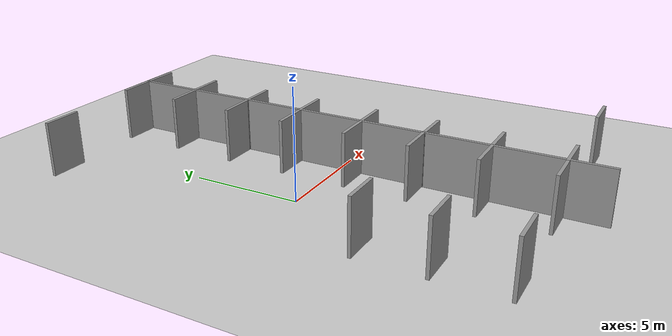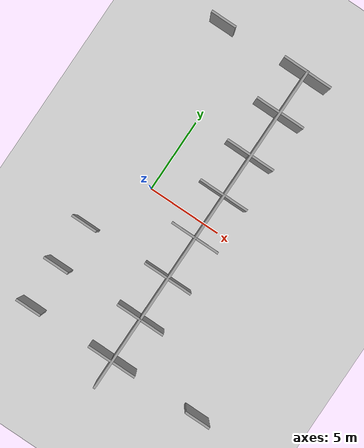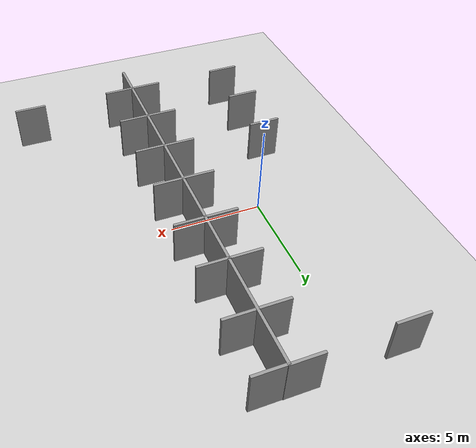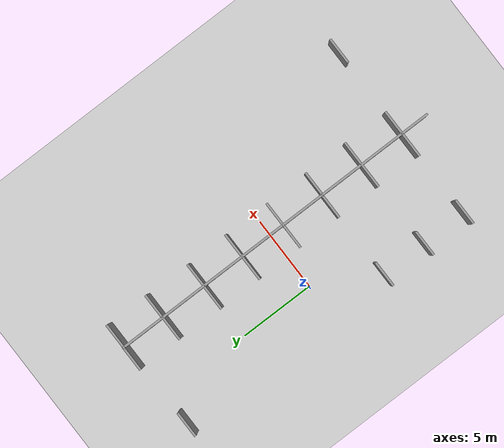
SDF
<sdf version="1.6">
 <world name="default">
  <model name="ground_plane">
   <static>1</static>
   <link name="link">
    <collision name="collision">
     <geometry><plane><normal>0 0 1</normal><size>100 100</size></plane></geometry>
     <surface>
      <contact><collide_bitmask>65535</collide_bitmask></contact>
      <friction><ode><mu>100</mu><mu2>50</mu2></ode></friction>
     </surface>
    </collision>
    <visual name="visual">
     <cast_shadows>0</cast_shadows>
     <geometry><plane><normal>0 0 1</normal><size>100 100</size></plane></geometry>
     <material>
      <script><uri>file://media/materials/scripts/gazebo.material</uri><name>Gazebo/Grey</name></script>
     </material>
    </visual>
   </link>
  </model>
  <model name="Warehouse_Map">
   <link name="Wall_10_clone_14">
    <pose>-15.9666 14.2849 0 0 -0 3.14159</pose>
    <visual name="Wall_10_Visual">
     <pose>0 0 1.25 0 -0 0</pose>
     <geometry><box><size>1.75 0.15 2.5</size></box></geometry>
     <material>
      <script><uri>file://media/materials/scripts/gazebo.material</uri><name>Gazebo/Grey</name></script>
      <ambient>1 1 1 1</ambient>
      <shader type="pixel"/>
     </material>
     <meta><layer>0</layer></meta>
    </visual>
    <collision name="Wall_10_Collision">
     <pose>0 0 1.25 0 -0 0</pose>
     <geometry><box><size>1.75 0.15 2.5</size></box></geometry>
     <surface>
      <friction>
       <ode><mu>1</mu><mu2>1</mu2><fdir1>0 0 0</fdir1><slip1>0</slip1><slip2>0</slip2></ode>
       <torsional>
        <coefficient>1</coefficient>
        <patch_radius>0</patch_radius>
        <surface_radius>0</surface_radius>
        <use_patch_radius>1</use_patch_radius>
        <ode><slip>0</slip></ode>
       </torsional>
      </friction>
      <bounce><restitution_coefficient>0</restitution_coefficient><threshold>1e+06</threshold></bounce>
      <contact>
       <collide_without_contact>0</collide_without_contact>
       <collide_without_contact_bitmask>1</collide_without_contact_bitmask>
       <collide_bitmask>1</collide_bitmask>
       <ode>
        <soft_cfm>0</soft_cfm>
        <soft_erp>0.2</soft_erp>
        <kp>1e+13</kp>
        <kd>1</kd>
        <max_vel>0.01</max_vel>
        <min_depth>0</min_depth>
       </ode>
       <bullet>
        <split_impulse>1</split_impulse>
        <split_impulse_penetration_threshold>-0.01</split_impulse_penetration_threshold>
        <soft_cfm>0</soft_cfm>
        <soft_erp>0.2</soft_erp>
        <kp>1e+13</kp>
        <kd>1</kd>
       </bullet>
      </contact>
     </surface>
    </collision>
   </link>
   <link name="Wall_10_clone_19">
    <pose>-16.0514 -0.584713 0 0 -0 3.14159</pose>
    <visual name="Wall_10_Visual">
     <pose>0 0 1.25 0 -0 0</pose>
     <geometry><box><size>1.75 0.15 2.5</size></box></geometry>
     <material>
      <script><uri>file://media/materials/scripts/gazebo.material</uri><name>Gazebo/Grey</name></script>
      <ambient>1 1 1 1</ambient>
      <shader type="pixel"/>
     </material>
     <meta><layer>0</layer></meta>
    </visual>
    <collision name="Wall_10_Collision">
     <pose>0 0 1.25 0 -0 0</pose>
     <geometry><box><size>1.75 0.15 2.5</size></box></geometry>
     <surface>
      <friction>
       <ode><mu>1</mu><mu2>1</mu2><fdir1>0 0 0</fdir1><slip1>0</slip1><slip2>0</slip2></ode>
       <torsional>
        <coefficient>1</coefficient>
        <patch_radius>0</patch_radius>
        <surface_radius>0</surface_radius>
        <use_patch_radius>1</use_patch_radius>
        <ode><slip>0</slip></ode>
       </torsional>
      </friction>
      <bounce><restitution_coefficient>0</restitution_coefficient><threshold>1e+06</threshold></bounce>
      <contact>
       <collide_without_contact>0</collide_without_contact>
       <collide_without_contact_bitmask>1</collide_without_contact_bitmask>
       <collide_bitmask>1</collide_bitmask>
       <ode>
        <soft_cfm>0</soft_cfm>
        <soft_erp>0.2</soft_erp>
        <kp>1e+13</kp>
        <kd>1</kd>
        <max_vel>0.01</max_vel>
        <min_depth>0</min_depth>
       </ode>
       <bullet>
        <split_impulse>1</split_impulse>
        <split_impulse_penetration_threshold>-0.01</split_impulse_penetration_threshold>
        <soft_cfm>0</soft_cfm>
        <soft_erp>0.2</soft_erp>
        <kp>1e+13</kp>
        <kd>1</kd>
       </bullet>
      </contact>
     </surface>
    </collision>
   </link>
   <link name="Wall_10_clone_20">
    <pose>-16.0486 -3.62068 0 0 -0 3.14159</pose>
    <visual name="Wall_10_Visual">
     <pose>0 0 1.25 0 -0 0</pose>
     <geometry><box><size>1.75 0.15 2.5</size></box></geometry>
     <material>
      <script><uri>file://media/materials/scripts/gazebo.material</uri><name>Gazebo/Grey</name></script>
      <ambient>1 1 1 1</ambient>
      <shader type="pixel"/>
     </material>
     <meta><layer>0</layer></meta>
    </visual>
    <collision name="Wall_10_Collision">
     <pose>0 0 1.25 0 -0 0</pose>
     <geometry><box><size>1.75 0.15 2.5</size></box></geometry>
     <surface>
      <friction>
       <ode><mu>1</mu><mu2>1</mu2><fdir1>0 0 0</fdir1><slip1>0</slip1><slip2>0</slip2></ode>
       <torsional>
        <coefficient>1</coefficient>
        <patch_radius>0</patch_radius>
        <surface_radius>0</surface_radius>
        <use_patch_radius>1</use_patch_radius>
        <ode><slip>0</slip></ode>
       </torsional>
      </friction>
      <bounce><restitution_coefficient>0</restitution_coefficient><threshold>1e+06</threshold></bounce>
      <contact>
       <collide_without_contact>0</collide_without_contact>
       <collide_without_contact_bitmask>1</collide_without_contact_bitmask>
       <collide_bitmask>1</collide_bitmask>
       <ode>
        <soft_cfm>0</soft_cfm>
        <soft_erp>0.2</soft_erp>
        <kp>1e+13</kp>
        <kd>1</kd>
        <max_vel>0.01</max_vel>
        <min_depth>0</min_depth>
       </ode>
       <bullet>
        <split_impulse>1</split_impulse>
        <split_impulse_penetration_threshold>-0.01</split_impulse_penetration_threshold>
        <soft_cfm>0</soft_cfm>
        <soft_erp>0.2</soft_erp>
        <kp>1e+13</kp>
        <kd>1</kd>
       </bullet>
      </contact>
     </surface>
    </collision>
   </link>
   <link name="Wall_10_clone_21">
    <pose>-16.0078 -6.65175 0 0 -0 3.14159</pose>
    <visual name="Wall_10_Visual">
     <pose>0 0 1.25 0 -0 0</pose>
     <geometry><box><size>1.75 0.15 2.5</size></box></geometry>
     <material>
      <script><uri>file://media/materials/scripts/gazebo.material</uri><name>Gazebo/Grey</name></script>
      <ambient>1 1 1 1</ambient>
      <shader type="pixel"/>
     </material>
     <meta><layer>0</layer></meta>
    </visual>
    <collision name="Wall_10_Collision">
     <pose>0 0 1.25 0 -0 0</pose>
     <geometry><box><size>1.75 0.15 2.5</size></box></geometry>
     <surface>
      <friction>
       <ode><mu>1</mu><mu2>1</mu2><fdir1>0 0 0</fdir1><slip1>0</slip1><slip2>0</slip2></ode>
       <torsional>
        <coefficient>1</coefficient>
        <patch_radius>0</patch_radius>
        <surface_radius>0</surface_radius>
        <use_patch_radius>1</use_patch_radius>
        <ode><slip>0</slip></ode>
       </torsional>
      </friction>
      <bounce><restitution_coefficient>0</restitution_coefficient><threshold>1e+06</threshold></bounce>
      <contact>
       <collide_without_contact>0</collide_without_contact>
       <collide_without_contact_bitmask>1</collide_without_contact_bitmask>
       <collide_bitmask>1</collide_bitmask>
       <ode>
        <soft_cfm>0</soft_cfm>
        <soft_erp>0.2</soft_erp>
        <kp>1e+13</kp>
        <kd>1</kd>
        <max_vel>0.01</max_vel>
        <min_depth>0</min_depth>
       </ode>
       <bullet>
        <split_impulse>1</split_impulse>
        <split_impulse_penetration_threshold>-0.01</split_impulse_penetration_threshold>
        <soft_cfm>0</soft_cfm>
        <soft_erp>0.2</soft_erp>
        <kp>1e+13</kp>
        <kd>1</kd>
       </bullet>
      </contact>
     </surface>
    </collision>
   </link>
   <link name="Wall_10_clone_21_clone">
    <pose>-10.8177 14.4759 0 0 -0 3.14159</pose>
    <visual name="Wall_10_Visual">
     <pose>0 0 1.25 0 -0 0</pose>
     <geometry><box><size>1.75 0.15 2.5</size></box></geometry>
     <material>
      <script><uri>file://media/materials/scripts/gazebo.material</uri><name>Gazebo/Grey</name></script>
      <ambient>1 1 1 1</ambient>
      <shader type="pixel"/>
     </material>
     <meta><layer>0</layer></meta>
    </visual>
    <collision name="Wall_10_Collision">
     <pose>0 0 1.25 0 -0 0</pose>
     <geometry><box><size>1.75 0.15 2.5</size></box></geometry>
     <surface>
      <friction>
       <ode><mu>1</mu><mu2>1</mu2><fdir1>0 0 0</fdir1><slip1>0</slip1><slip2>0</slip2></ode>
       <torsional>
        <coefficient>1</coefficient>
        <patch_radius>0</patch_radius>
        <surface_radius>0</surface_radius>
        <use_patch_radius>1</use_patch_radius>
        <ode><slip>0</slip></ode>
       </torsional>
      </friction>
      <bounce><restitution_coefficient>0</restitution_coefficient><threshold>1e+06</threshold></bounce>
      <contact>
       <collide_without_contact>0</collide_without_contact>
       <collide_without_contact_bitmask>1</collide_without_contact_bitmask>
       <collide_bitmask>1</collide_bitmask>
       <ode>
        <soft_cfm>0</soft_cfm>
        <soft_erp>0.2</soft_erp>
        <kp>1e+13</kp>
        <kd>1</kd>
        <max_vel>0.01</max_vel>
        <min_depth>0</min_depth>
       </ode>
       <bullet>
        <split_impulse>1</split_impulse>
        <split_impulse_penetration_threshold>-0.01</split_impulse_penetration_threshold>
        <soft_cfm>0</soft_cfm>
        <soft_erp>0.2</soft_erp>
        <kp>1e+13</kp>
        <kd>1</kd>
       </bullet>
      </contact>
     </surface>
    </collision>
   </link>
   <link name="Wall_10_clone_21_clone_0">
    <pose>-9.18611 14.4524 0 0 -0 3.14159</pose>
    <visual name="Wall_10_Visual">
     <pose>0 0 1.25 0 -0 0</pose>
     <geometry><box><size>1.75 0.15 2.5</size></box></geometry>
     <material>
      <script><uri>file://media/materials/scripts/gazebo.material</uri><name>Gazebo/Grey</name></script>
      <ambient>1 1 1 1</ambient>
      <shader type="pixel"/>
     </material>
     <meta><layer>0</layer></meta>
    </visual>
    <collision name="Wall_10_Collision">
     <pose>0 0 1.25 0 -0 0</pose>
     <geometry><box><size>1.75 0.15 2.5</size></box></geometry>
     <surface>
      <friction>
       <ode><mu>1</mu><mu2>1</mu2><fdir1>0 0 0</fdir1><slip1>0</slip1><slip2>0</slip2></ode>
       <torsional>
        <coefficient>1</coefficient>
        <patch_radius>0</patch_radius>
        <surface_radius>0</surface_radius>
        <use_patch_radius>1</use_patch_radius>
        <ode><slip>0</slip></ode>
       </torsional>
      </friction>
      <bounce><restitution_coefficient>0</restitution_coefficient><threshold>1e+06</threshold></bounce>
      <contact>
       <collide_without_contact>0</collide_without_contact>
       <collide_without_contact_bitmask>1</collide_without_contact_bitmask>
       <collide_bitmask>1</collide_bitmask>
       <ode>
        <soft_cfm>0</soft_cfm>
        <soft_erp>0.2</soft_erp>
        <kp>1e+13</kp>
        <kd>1</kd>
        <max_vel>0.01</max_vel>
        <min_depth>0</min_depth>
       </ode>
       <bullet>
        <split_impulse>1</split_impulse>
        <split_impulse_penetration_threshold>-0.01</split_impulse_penetration_threshold>
        <soft_cfm>0</soft_cfm>
        <soft_erp>0.2</soft_erp>
        <kp>1e+13</kp>
        <kd>1</kd>
       </bullet>
      </contact>
     </surface>
    </collision>
   </link>
   <link name="Wall_10_clone_21_clone_1">
    <pose>-10.8033 11.5118 0 0 -0 3.14159</pose>
    <visual name="Wall_10_Visual">
     <pose>0 0 1.25 0 -0 0</pose>
     <geometry><box><size>1.75 0.15 2.5</size></box></geometry>
     <material>
      <script><uri>file://media/materials/scripts/gazebo.material</uri><name>Gazebo/Grey</name></script>
      <ambient>1 1 1 1</ambient>
      <shader type="pixel"/>
     </material>
     <meta><layer>0</layer></meta>
    </visual>
    <collision name="Wall_10_Collision">
     <pose>0 0 1.25 0 -0 0</pose>
     <geometry><box><size>1.75 0.15 2.5</size></box></geometry>
     <surface>
      <friction>
       <ode><mu>1</mu><mu2>1</mu2><fdir1>0 0 0</fdir1><slip1>0</slip1><slip2>0</slip2></ode>
       <torsional>
        <coefficient>1</coefficient>
        <patch_radius>0</patch_radius>
        <surface_radius>0</surface_radius>
        <use_patch_radius>1</use_patch_radius>
        <ode><slip>0</slip></ode>
       </torsional>
      </friction>
      <bounce><restitution_coefficient>0</restitution_coefficient><threshold>1e+06</threshold></bounce>
      <contact>
       <collide_without_contact>0</collide_without_contact>
       <collide_without_contact_bitmask>1</collide_without_contact_bitmask>
       <collide_bitmask>1</collide_bitmask>
       <ode>
        <soft_cfm>0</soft_cfm>
        <soft_erp>0.2</soft_erp>
        <kp>1e+13</kp>
        <kd>1</kd>
        <max_vel>0.01</max_vel>
        <min_depth>0</min_depth>
       </ode>
       <bullet>
        <split_impulse>1</split_impulse>
        <split_impulse_penetration_threshold>-0.01</split_impulse_penetration_threshold>
        <soft_cfm>0</soft_cfm>
        <soft_erp>0.2</soft_erp>
        <kp>1e+13</kp>
        <kd>1</kd>
       </bullet>
      </contact>
     </surface>
    </collision>
   </link>
   <link name="Wall_10_clone_21_clone_10">
    <pose>-9.22502 -0.53089 0 0 -0 3.14159</pose>
    <visual name="Wall_10_Visual">
     <pose>0 0 1.25 0 -0 0</pose>
     <geometry><box><size>1.75 0.15 2.5</size></box></geometry>
     <material>
      <script><uri>file://media/materials/scripts/gazebo.material</uri><name>Gazebo/Grey</name></script>
      <ambient>1 1 1 1</ambient>
      <shader type="pixel"/>
     </material>
     <meta><layer>0</layer></meta>
    </visual>
    <collision name="Wall_10_Collision">
     <pose>0 0 1.25 0 -0 0</pose>
     <geometry><box><size>1.75 0.15 2.5</size></box></geometry>
     <surface>
      <friction>
       <ode><mu>1</mu><mu2>1</mu2><fdir1>0 0 0</fdir1><slip1>0</slip1><slip2>0</slip2></ode>
       <torsional>
        <coefficient>1</coefficient>
        <patch_radius>0</patch_radius>
        <surface_radius>0</surface_radius>
        <use_patch_radius>1</use_patch_radius>
        <ode><slip>0</slip></ode>
       </torsional>
      </friction>
      <bounce><restitution_coefficient>0</restitution_coefficient><threshold>1e+06</threshold></bounce>
      <contact>
       <collide_without_contact>0</collide_without_contact>
       <collide_without_contact_bitmask>1</collide_without_contact_bitmask>
       <collide_bitmask>1</collide_bitmask>
       <ode>
        <soft_cfm>0</soft_cfm>
        <soft_erp>0.2</soft_erp>
        <kp>1e+13</kp>
        <kd>1</kd>
        <max_vel>0.01</max_vel>
        <min_depth>0</min_depth>
       </ode>
       <bullet>
        <split_impulse>1</split_impulse>
        <split_impulse_penetration_threshold>-0.01</split_impulse_penetration_threshold>
        <soft_cfm>0</soft_cfm>
        <soft_erp>0.2</soft_erp>
        <kp>1e+13</kp>
        <kd>1</kd>
       </bullet>
      </contact>
     </surface>
    </collision>
   </link>
   <link name="Wall_10_clone_21_clone_11">
    <pose>-10.8073 -3.49579 0 0 -0 3.14159</pose>
    <visual name="Wall_10_Visual">
     <pose>0 0 1.25 0 -0 0</pose>
     <geometry><box><size>1.75 0.15 2.5</size></box></geometry>
     <material>
      <script><uri>file://media/materials/scripts/gazebo.material</uri><name>Gazebo/Grey</name></script>
      <ambient>1 1 1 1</ambient>
      <shader type="pixel"/>
     </material>
     <meta><layer>0</layer></meta>
    </visual>
    <collision name="Wall_10_Collision">
     <pose>0 0 1.25 0 -0 0</pose>
     <geometry><box><size>1.75 0.15 2.5</size></box></geometry>
     <surface>
      <friction>
       <ode><mu>1</mu><mu2>1</mu2><fdir1>0 0 0</fdir1><slip1>0</slip1><slip2>0</slip2></ode>
       <torsional>
        <coefficient>1</coefficient>
        <patch_radius>0</patch_radius>
        <surface_radius>0</surface_radius>
        <use_patch_radius>1</use_patch_radius>
        <ode><slip>0</slip></ode>
       </torsional>
      </friction>
      <bounce><restitution_coefficient>0</restitution_coefficient><threshold>1e+06</threshold></bounce>
      <contact>
       <collide_without_contact>0</collide_without_contact>
       <collide_without_contact_bitmask>1</collide_without_contact_bitmask>
       <collide_bitmask>1</collide_bitmask>
       <ode>
        <soft_cfm>0</soft_cfm>
        <soft_erp>0.2</soft_erp>
        <kp>1e+13</kp>
        <kd>1</kd>
        <max_vel>0.01</max_vel>
        <min_depth>0</min_depth>
       </ode>
       <bullet>
        <split_impulse>1</split_impulse>
        <split_impulse_penetration_threshold>-0.01</split_impulse_penetration_threshold>
        <soft_cfm>0</soft_cfm>
        <soft_erp>0.2</soft_erp>
        <kp>1e+13</kp>
        <kd>1</kd>
       </bullet>
      </contact>
     </surface>
    </collision>
   </link>
   <link name="Wall_10_clone_21_clone_12">
    <pose>-9.22955 -3.49491 0 0 -0 3.14159</pose>
    <visual name="Wall_10_Visual">
     <pose>0 0 1.25 0 -0 0</pose>
     <geometry><box><size>1.75 0.15 2.5</size></box></geometry>
     <material>
      <script><uri>file://media/materials/scripts/gazebo.material</uri><name>Gazebo/Grey</name></script>
      <ambient>1 1 1 1</ambient>
      <shader type="pixel"/>
     </material>
     <meta><layer>0</layer></meta>
    </visual>
    <collision name="Wall_10_Collision">
     <pose>0 0 1.25 0 -0 0</pose>
     <geometry><box><size>1.75 0.15 2.5</size></box></geometry>
     <surface>
      <friction>
       <ode><mu>1</mu><mu2>1</mu2><fdir1>0 0 0</fdir1><slip1>0</slip1><slip2>0</slip2></ode>
       <torsional>
        <coefficient>1</coefficient>
        <patch_radius>0</patch_radius>
        <surface_radius>0</surface_radius>
        <use_patch_radius>1</use_patch_radius>
        <ode><slip>0</slip></ode>
       </torsional>
      </friction>
      <bounce><restitution_coefficient>0</restitution_coefficient><threshold>1e+06</threshold></bounce>
      <contact>
       <collide_without_contact>0</collide_without_contact>
       <collide_without_contact_bitmask>1</collide_without_contact_bitmask>
       <collide_bitmask>1</collide_bitmask>
       <ode>
        <soft_cfm>0</soft_cfm>
        <soft_erp>0.2</soft_erp>
        <kp>1e+13</kp>
        <kd>1</kd>
        <max_vel>0.01</max_vel>
        <min_depth>0</min_depth>
       </ode>
       <bullet>
        <split_impulse>1</split_impulse>
        <split_impulse_penetration_threshold>-0.01</split_impulse_penetration_threshold>
        <soft_cfm>0</soft_cfm>
        <soft_erp>0.2</soft_erp>
        <kp>1e+13</kp>
        <kd>1</kd>
       </bullet>
      </contact>
     </surface>
    </collision>
   </link>
   <link name="Wall_10_clone_21_clone_13">
    <pose>-10.8425 -6.55192 0 0 -0 3.14159</pose>
    <visual name="Wall_10_Visual">
     <pose>0 0 1.25 0 -0 0</pose>
     <geometry><box><size>1.75 0.15 2.5</size></box></geometry>
     <material>
      <script><uri>file://media/materials/scripts/gazebo.material</uri><name>Gazebo/Grey</name></script>
      <ambient>1 1 1 1</ambient>
      <shader type="pixel"/>
     </material>
     <meta><layer>0</layer></meta>
    </visual>
    <collision name="Wall_10_Collision">
     <pose>0 0 1.25 0 -0 0</pose>
     <geometry><box><size>1.75 0.15 2.5</size></box></geometry>
     <surface>
      <friction>
       <ode><mu>1</mu><mu2>1</mu2><fdir1>0 0 0</fdir1><slip1>0</slip1><slip2>0</slip2></ode>
       <torsional>
        <coefficient>1</coefficient>
        <patch_radius>0</patch_radius>
        <surface_radius>0</surface_radius>
        <use_patch_radius>1</use_patch_radius>
        <ode><slip>0</slip></ode>
       </torsional>
      </friction>
      <bounce><restitution_coefficient>0</restitution_coefficient><threshold>1e+06</threshold></bounce>
      <contact>
       <collide_without_contact>0</collide_without_contact>
       <collide_without_contact_bitmask>1</collide_without_contact_bitmask>
       <collide_bitmask>1</collide_bitmask>
       <ode>
        <soft_cfm>0</soft_cfm>
        <soft_erp>0.2</soft_erp>
        <kp>1e+13</kp>
        <kd>1</kd>
        <max_vel>0.01</max_vel>
        <min_depth>0</min_depth>
       </ode>
       <bullet>
        <split_impulse>1</split_impulse>
        <split_impulse_penetration_threshold>-0.01</split_impulse_penetration_threshold>
        <soft_cfm>0</soft_cfm>
        <soft_erp>0.2</soft_erp>
        <kp>1e+13</kp>
        <kd>1</kd>
       </bullet>
      </contact>
     </surface>
    </collision>
   </link>
   <link name="Wall_10_clone_21_clone_14">
    <pose>-9.23429 -6.54255 0 0 -0 3.14159</pose>
    <visual name="Wall_10_Visual">
     <pose>0 0 1.25 0 -0 0</pose>
     <geometry><box><size>1.75 0.15 2.5</size></box></geometry>
     <material>
      <script><uri>file://media/materials/scripts/gazebo.material</uri><name>Gazebo/Grey</name></script>
      <ambient>1 1 1 1</ambient>
      <shader type="pixel"/>
     </material>
     <meta><layer>0</layer></meta>
    </visual>
    <collision name="Wall_10_Collision">
     <pose>0 0 1.25 0 -0 0</pose>
     <geometry><box><size>1.75 0.15 2.5</size></box></geometry>
     <surface>
      <friction>
       <ode><mu>1</mu><mu2>1</mu2><fdir1>0 0 0</fdir1><slip1>0</slip1><slip2>0</slip2></ode>
       <torsional>
        <coefficient>1</coefficient>
        <patch_radius>0</patch_radius>
        <surface_radius>0</surface_radius>
        <use_patch_radius>1</use_patch_radius>
        <ode><slip>0</slip></ode>
       </torsional>
      </friction>
      <bounce><restitution_coefficient>0</restitution_coefficient><threshold>1e+06</threshold></bounce>
      <contact>
       <collide_without_contact>0</collide_without_contact>
       <collide_without_contact_bitmask>1</collide_without_contact_bitmask>
       <collide_bitmask>1</collide_bitmask>
       <ode>
        <soft_cfm>0</soft_cfm>
        <soft_erp>0.2</soft_erp>
        <kp>1e+13</kp>
        <kd>1</kd>
        <max_vel>0.01</max_vel>
        <min_depth>0</min_depth>
       </ode>
       <bullet>
        <split_impulse>1</split_impulse>
        <split_impulse_penetration_threshold>-0.01</split_impulse_penetration_threshold>
        <soft_cfm>0</soft_cfm>
        <soft_erp>0.2</soft_erp>
        <kp>1e+13</kp>
        <kd>1</kd>
       </bullet>
      </contact>
     </surface>
    </collision>
   </link>
   <link name="Wall_10_clone_21_clone_2">
    <pose>-9.19474 11.5283 0 0 -0 3.14159</pose>
    <visual name="Wall_10_Visual">
     <pose>0 0 1.25 0 -0 0</pose>
     <geometry><box><size>1.75 0.15 2.5</size></box></geometry>
     <material>
      <script><uri>file://media/materials/scripts/gazebo.material</uri><name>Gazebo/Grey</name></script>
      <ambient>1 1 1 1</ambient>
      <shader type="pixel"/>
     </material>
     <meta><layer>0</layer></meta>
    </visual>
    <collision name="Wall_10_Collision">
     <pose>0 0 1.25 0 -0 0</pose>
     <geometry><box><size>1.75 0.15 2.5</size></box></geometry>
     <surface>
      <friction>
       <ode><mu>1</mu><mu2>1</mu2><fdir1>0 0 0</fdir1><slip1>0</slip1><slip2>0</slip2></ode>
       <torsional>
        <coefficient>1</coefficient>
        <patch_radius>0</patch_radius>
        <surface_radius>0</surface_radius>
        <use_patch_radius>1</use_patch_radius>
        <ode><slip>0</slip></ode>
       </torsional>
      </friction>
      <bounce><restitution_coefficient>0</restitution_coefficient><threshold>1e+06</threshold></bounce>
      <contact>
       <collide_without_contact>0</collide_without_contact>
       <collide_without_contact_bitmask>1</collide_without_contact_bitmask>
       <collide_bitmask>1</collide_bitmask>
       <ode>
        <soft_cfm>0</soft_cfm>
        <soft_erp>0.2</soft_erp>
        <kp>1e+13</kp>
        <kd>1</kd>
        <max_vel>0.01</max_vel>
        <min_depth>0</min_depth>
       </ode>
       <bullet>
        <split_impulse>1</split_impulse>
        <split_impulse_penetration_threshold>-0.01</split_impulse_penetration_threshold>
        <soft_cfm>0</soft_cfm>
        <soft_erp>0.2</soft_erp>
        <kp>1e+13</kp>
        <kd>1</kd>
       </bullet>
      </contact>
     </surface>
    </collision>
   </link>
   <link name="Wall_10_clone_21_clone_23">
    <pose>-3.78916 -6.57078 0 0 -0 3.14159</pose>
    <visual name="Wall_10_Visual">
     <pose>0 0 1.25 0 -0 0</pose>
     <geometry><box><size>1.75 0.15 2.5</size></box></geometry>
     <material>
      <script><uri>file://media/materials/scripts/gazebo.material</uri><name>Gazebo/Grey</name></script>
      <ambient>1 1 1 1</ambient>
      <shader type="pixel"/>
     </material>
     <meta><layer>0</layer></meta>
    </visual>
    <collision name="Wall_10_Collision">
     <pose>0 0 1.25 0 -0 0</pose>
     <geometry><box><size>1.75 0.15 2.5</size></box></geometry>
     <surface>
      <friction>
       <ode><mu>1</mu><mu2>1</mu2><fdir1>0 0 0</fdir1><slip1>0</slip1><slip2>0</slip2></ode>
       <torsional>
        <coefficient>1</coefficient>
        <patch_radius>0</patch_radius>
        <surface_radius>0</surface_radius>
        <use_patch_radius>1</use_patch_radius>
        <ode><slip>0</slip></ode>
       </torsional>
      </friction>
      <bounce><restitution_coefficient>0</restitution_coefficient><threshold>1e+06</threshold></bounce>
      <contact>
       <collide_without_contact>0</collide_without_contact>
       <collide_without_contact_bitmask>1</collide_without_contact_bitmask>
       <collide_bitmask>1</collide_bitmask>
       <ode>
        <soft_cfm>0</soft_cfm>
        <soft_erp>0.2</soft_erp>
        <kp>1e+13</kp>
        <kd>1</kd>
        <max_vel>0.01</max_vel>
        <min_depth>0</min_depth>
       </ode>
       <bullet>
        <split_impulse>1</split_impulse>
        <split_impulse_penetration_threshold>-0.01</split_impulse_penetration_threshold>
        <soft_cfm>0</soft_cfm>
        <soft_erp>0.2</soft_erp>
        <kp>1e+13</kp>
        <kd>1</kd>
       </bullet>
      </contact>
     </surface>
    </collision>
   </link>
   <link name="Wall_10_clone_21_clone_3">
    <pose>-10.8737 8.41939 0 0 -0 3.14159</pose>
    <visual name="Wall_10_Visual">
     <pose>0 0 1.25 0 -0 0</pose>
     <geometry><box><size>1.75 0.15 2.5</size></box></geometry>
     <material>
      <script><uri>file://media/materials/scripts/gazebo.material</uri><name>Gazebo/Grey</name></script>
      <ambient>1 1 1 1</ambient>
      <shader type="pixel"/>
     </material>
     <meta><layer>0</layer></meta>
    </visual>
    <collision name="Wall_10_Collision">
     <pose>0 0 1.25 0 -0 0</pose>
     <geometry><box><size>1.75 0.15 2.5</size></box></geometry>
     <surface>
      <friction>
       <ode><mu>1</mu><mu2>1</mu2><fdir1>0 0 0</fdir1><slip1>0</slip1><slip2>0</slip2></ode>
       <torsional>
        <coefficient>1</coefficient>
        <patch_radius>0</patch_radius>
        <surface_radius>0</surface_radius>
        <use_patch_radius>1</use_patch_radius>
        <ode><slip>0</slip></ode>
       </torsional>
      </friction>
      <bounce><restitution_coefficient>0</restitution_coefficient><threshold>1e+06</threshold></bounce>
      <contact>
       <collide_without_contact>0</collide_without_contact>
       <collide_without_contact_bitmask>1</collide_without_contact_bitmask>
       <collide_bitmask>1</collide_bitmask>
       <ode>
        <soft_cfm>0</soft_cfm>
        <soft_erp>0.2</soft_erp>
        <kp>1e+13</kp>
        <kd>1</kd>
        <max_vel>0.01</max_vel>
        <min_depth>0</min_depth>
       </ode>
       <bullet>
        <split_impulse>1</split_impulse>
        <split_impulse_penetration_threshold>-0.01</split_impulse_penetration_threshold>
        <soft_cfm>0</soft_cfm>
        <soft_erp>0.2</soft_erp>
        <kp>1e+13</kp>
        <kd>1</kd>
       </bullet>
      </contact>
     </surface>
    </collision>
   </link>
   <link name="Wall_10_clone_21_clone_4">
    <pose>-9.26282 8.41081 0 0 -0 3.14159</pose>
    <visual name="Wall_10_Visual">
     <pose>0 0 1.25 0 -0 0</pose>
     <geometry><box><size>1.75 0.15 2.5</size></box></geometry>
     <material>
      <script><uri>file://media/materials/scripts/gazebo.material</uri><name>Gazebo/Grey</name></script>
      <ambient>1 1 1 1</ambient>
      <shader type="pixel"/>
     </material>
     <meta><layer>0</layer></meta>
    </visual>
    <collision name="Wall_10_Collision">
     <pose>0 0 1.25 0 -0 0</pose>
     <geometry><box><size>1.75 0.15 2.5</size></box></geometry>
     <surface>
      <friction>
       <ode><mu>1</mu><mu2>1</mu2><fdir1>0 0 0</fdir1><slip1>0</slip1><slip2>0</slip2></ode>
       <torsional>
        <coefficient>1</coefficient>
        <patch_radius>0</patch_radius>
        <surface_radius>0</surface_radius>
        <use_patch_radius>1</use_patch_radius>
        <ode><slip>0</slip></ode>
       </torsional>
      </friction>
      <bounce><restitution_coefficient>0</restitution_coefficient><threshold>1e+06</threshold></bounce>
      <contact>
       <collide_without_contact>0</collide_without_contact>
       <collide_without_contact_bitmask>1</collide_without_contact_bitmask>
       <collide_bitmask>1</collide_bitmask>
       <ode>
        <soft_cfm>0</soft_cfm>
        <soft_erp>0.2</soft_erp>
        <kp>1e+13</kp>
        <kd>1</kd>
        <max_vel>0.01</max_vel>
        <min_depth>0</min_depth>
       </ode>
       <bullet>
        <split_impulse>1</split_impulse>
        <split_impulse_penetration_threshold>-0.01</split_impulse_penetration_threshold>
        <soft_cfm>0</soft_cfm>
        <soft_erp>0.2</soft_erp>
        <kp>1e+13</kp>
        <kd>1</kd>
       </bullet>
      </contact>
     </surface>
    </collision>
   </link>
   <link name="Wall_10_clone_21_clone_5">
    <pose>-10.8693 5.52086 0 0 -0 3.14159</pose>
    <visual name="Wall_10_Visual">
     <pose>0 0 1.25 0 -0 0</pose>
     <geometry><box><size>1.75 0.15 2.5</size></box></geometry>
     <material>
      <script><uri>file://media/materials/scripts/gazebo.material</uri><name>Gazebo/Grey</name></script>
      <ambient>1 1 1 1</ambient>
      <shader type="pixel"/>
     </material>
     <meta><layer>0</layer></meta>
    </visual>
    <collision name="Wall_10_Collision">
     <pose>0 0 1.25 0 -0 0</pose>
     <geometry><box><size>1.75 0.15 2.5</size></box></geometry>
     <surface>
      <friction>
       <ode><mu>1</mu><mu2>1</mu2><fdir1>0 0 0</fdir1><slip1>0</slip1><slip2>0</slip2></ode>
       <torsional>
        <coefficient>1</coefficient>
        <patch_radius>0</patch_radius>
        <surface_radius>0</surface_radius>
        <use_patch_radius>1</use_patch_radius>
        <ode><slip>0</slip></ode>
       </torsional>
      </friction>
      <bounce><restitution_coefficient>0</restitution_coefficient><threshold>1e+06</threshold></bounce>
      <contact>
       <collide_without_contact>0</collide_without_contact>
       <collide_without_contact_bitmask>1</collide_without_contact_bitmask>
       <collide_bitmask>1</collide_bitmask>
       <ode>
        <soft_cfm>0</soft_cfm>
        <soft_erp>0.2</soft_erp>
        <kp>1e+13</kp>
        <kd>1</kd>
        <max_vel>0.01</max_vel>
        <min_depth>0</min_depth>
       </ode>
       <bullet>
        <split_impulse>1</split_impulse>
        <split_impulse_penetration_threshold>-0.01</split_impulse_penetration_threshold>
        <soft_cfm>0</soft_cfm>
        <soft_erp>0.2</soft_erp>
        <kp>1e+13</kp>
        <kd>1</kd>
       </bullet>
      </contact>
     </surface>
    </collision>
   </link>
   <link name="Wall_10_clone_21_clone_6">
    <pose>-9.23019 5.53074 0 0 -0 3.14159</pose>
    <visual name="Wall_10_Visual">
     <pose>0 0 1.25 0 -0 0</pose>
     <geometry><box><size>1.75 0.15 2.5</size></box></geometry>
     <material>
      <script><uri>file://media/materials/scripts/gazebo.material</uri><name>Gazebo/Grey</name></script>
      <ambient>1 1 1 1</ambient>
      <shader type="pixel"/>
     </material>
     <meta><layer>0</layer></meta>
    </visual>
    <collision name="Wall_10_Collision">
     <pose>0 0 1.25 0 -0 0</pose>
     <geometry><box><size>1.75 0.15 2.5</size></box></geometry>
     <surface>
      <friction>
       <ode><mu>1</mu><mu2>1</mu2><fdir1>0 0 0</fdir1><slip1>0</slip1><slip2>0</slip2></ode>
       <torsional>
        <coefficient>1</coefficient>
        <patch_radius>0</patch_radius>
        <surface_radius>0</surface_radius>
        <use_patch_radius>1</use_patch_radius>
        <ode><slip>0</slip></ode>
       </torsional>
      </friction>
      <bounce><restitution_coefficient>0</restitution_coefficient><threshold>1e+06</threshold></bounce>
      <contact>
       <collide_without_contact>0</collide_without_contact>
       <collide_without_contact_bitmask>1</collide_without_contact_bitmask>
       <collide_bitmask>1</collide_bitmask>
       <ode>
        <soft_cfm>0</soft_cfm>
        <soft_erp>0.2</soft_erp>
        <kp>1e+13</kp>
        <kd>1</kd>
        <max_vel>0.01</max_vel>
        <min_depth>0</min_depth>
       </ode>
       <bullet>
        <split_impulse>1</split_impulse>
        <split_impulse_penetration_threshold>-0.01</split_impulse_penetration_threshold>
        <soft_cfm>0</soft_cfm>
        <soft_erp>0.2</soft_erp>
        <kp>1e+13</kp>
        <kd>1</kd>
       </bullet>
      </contact>
     </surface>
    </collision>
   </link>
   <link name="Wall_10_clone_21_clone_7">
    <pose>-10.8437 2.42605 0 0 -0 3.14159</pose>
    <visual name="Wall_10_Visual">
     <pose>0 0 1.25 0 -0 0</pose>
     <geometry><box><size>1.75 0.15 2.5</size></box></geometry>
     <material>
      <script><uri>file://media/materials/scripts/gazebo.material</uri><name>Gazebo/Grey</name></script>
      <ambient>1 1 1 1</ambient>
      <shader type="pixel"/>
     </material>
     <meta><layer>0</layer></meta>
    </visual>
    <collision name="Wall_10_Collision">
     <pose>0 0 1.25 0 -0 0</pose>
     <geometry><box><size>1.75 0.15 2.5</size></box></geometry>
     <surface>
      <friction>
       <ode><mu>1</mu><mu2>1</mu2><fdir1>0 0 0</fdir1><slip1>0</slip1><slip2>0</slip2></ode>
       <torsional>
        <coefficient>1</coefficient>
        <patch_radius>0</patch_radius>
        <surface_radius>0</surface_radius>
        <use_patch_radius>1</use_patch_radius>
        <ode><slip>0</slip></ode>
       </torsional>
      </friction>
      <bounce><restitution_coefficient>0</restitution_coefficient><threshold>1e+06</threshold></bounce>
      <contact>
       <collide_without_contact>0</collide_without_contact>
       <collide_without_contact_bitmask>1</collide_without_contact_bitmask>
       <collide_bitmask>1</collide_bitmask>
       <ode>
        <soft_cfm>0</soft_cfm>
        <soft_erp>0.2</soft_erp>
        <kp>1e+13</kp>
        <kd>1</kd>
        <max_vel>0.01</max_vel>
        <min_depth>0</min_depth>
       </ode>
       <bullet>
        <split_impulse>1</split_impulse>
        <split_impulse_penetration_threshold>-0.01</split_impulse_penetration_threshold>
        <soft_cfm>0</soft_cfm>
        <soft_erp>0.2</soft_erp>
        <kp>1e+13</kp>
        <kd>1</kd>
       </bullet>
      </contact>
     </surface>
    </collision>
   </link>
   <link name="Wall_10_clone_21_clone_8">
    <pose>-9.25022 2.43329 0 0 -0 3.14159</pose>
    <visual name="Wall_10_Visual">
     <pose>0 0 1.25 0 -0 0</pose>
     <geometry><box><size>1.75 0.15 2.5</size></box></geometry>
     <material>
      <script><uri>file://media/materials/scripts/gazebo.material</uri><name>Gazebo/Grey</name></script>
      <ambient>1 1 1 1</ambient>
      <shader type="pixel"/>
     </material>
     <meta><layer>0</layer></meta>
    </visual>
    <collision name="Wall_10_Collision">
     <pose>0 0 1.25 0 -0 0</pose>
     <geometry><box><size>1.75 0.15 2.5</size></box></geometry>
     <surface>
      <friction>
       <ode><mu>1</mu><mu2>1</mu2><fdir1>0 0 0</fdir1><slip1>0</slip1><slip2>0</slip2></ode>
       <torsional>
        <coefficient>1</coefficient>
        <patch_radius>0</patch_radius>
        <surface_radius>0</surface_radius>
        <use_patch_radius>1</use_patch_radius>
        <ode><slip>0</slip></ode>
       </torsional>
      </friction>
      <bounce><restitution_coefficient>0</restitution_coefficient><threshold>1e+06</threshold></bounce>
      <contact>
       <collide_without_contact>0</collide_without_contact>
       <collide_without_contact_bitmask>1</collide_without_contact_bitmask>
       <collide_bitmask>1</collide_bitmask>
       <ode>
        <soft_cfm>0</soft_cfm>
        <soft_erp>0.2</soft_erp>
        <kp>1e+13</kp>
        <kd>1</kd>
        <max_vel>0.01</max_vel>
        <min_depth>0</min_depth>
       </ode>
       <bullet>
        <split_impulse>1</split_impulse>
        <split_impulse_penetration_threshold>-0.01</split_impulse_penetration_threshold>
        <soft_cfm>0</soft_cfm>
        <soft_erp>0.2</soft_erp>
        <kp>1e+13</kp>
        <kd>1</kd>
       </bullet>
      </contact>
     </surface>
    </collision>
   </link>
   <link name="Wall_10_clone_21_clone_9">
    <pose>-10.8374 -0.507787 0 0 -0 3.14159</pose>
    <visual name="Wall_10_Visual">
     <pose>0 0 1.25 0 -0 0</pose>
     <geometry><box><size>1.75 0.15 2.5</size></box></geometry>
     <material>
      <script><uri>file://media/materials/scripts/gazebo.material</uri><name>Gazebo/Grey</name></script>
      <ambient>1 1 1 1</ambient>
      <shader type="pixel"/>
     </material>
     <meta><layer>0</layer></meta>
    </visual>
    <collision name="Wall_10_Collision">
     <pose>0 0 1.25 0 -0 0</pose>
     <geometry><box><size>1.75 0.15 2.5</size></box></geometry>
     <surface>
      <friction>
       <ode><mu>1</mu><mu2>1</mu2><fdir1>0 0 0</fdir1><slip1>0</slip1><slip2>0</slip2></ode>
       <torsional>
        <coefficient>1</coefficient>
        <patch_radius>0</patch_radius>
        <surface_radius>0</surface_radius>
        <use_patch_radius>1</use_patch_radius>
        <ode><slip>0</slip></ode>
       </torsional>
      </friction>
      <bounce><restitution_coefficient>0</restitution_coefficient><threshold>1e+06</threshold></bounce>
      <contact>
       <collide_without_contact>0</collide_without_contact>
       <collide_without_contact_bitmask>1</collide_without_contact_bitmask>
       <collide_bitmask>1</collide_bitmask>
       <ode>
        <soft_cfm>0</soft_cfm>
        <soft_erp>0.2</soft_erp>
        <kp>1e+13</kp>
        <kd>1</kd>
        <max_vel>0.01</max_vel>
        <min_depth>0</min_depth>
       </ode>
       <bullet>
        <split_impulse>1</split_impulse>
        <split_impulse_penetration_threshold>-0.01</split_impulse_penetration_threshold>
        <soft_cfm>0</soft_cfm>
        <soft_erp>0.2</soft_erp>
        <kp>1e+13</kp>
        <kd>1</kd>
       </bullet>
      </contact>
     </surface>
    </collision>
   </link>
   <link name="Wall_11_clone_0">
    <pose>-10.0084 3.03629 0 0 0 -1.5708</pose>
    <visual name="Wall_11_Visual">
     <pose>0 0 1.25 0 -0 0</pose>
     <geometry><box><size>23 0.15 2.5</size></box></geometry>
     <material>
      <script><uri>file://media/materials/scripts/gazebo.material</uri><name>Gazebo/Grey</name></script>
      <ambient>1 1 1 1</ambient>
      <shader type="pixel"/>
     </material>
     <meta><layer>0</layer></meta>
    </visual>
    <collision name="Wall_11_Collision">
     <pose>0 0 1.25 0 -0 0</pose>
     <geometry><box><size>23 0.15 2.5</size></box></geometry>
     <surface>
      <friction>
       <ode><mu>1</mu><mu2>1</mu2><fdir1>0 0 0</fdir1><slip1>0</slip1><slip2>0</slip2></ode>
       <torsional>
        <coefficient>1</coefficient>
        <patch_radius>0</patch_radius>
        <surface_radius>0</surface_radius>
        <use_patch_radius>1</use_patch_radius>
        <ode><slip>0</slip></ode>
       </torsional>
      </friction>
      <bounce><restitution_coefficient>0</restitution_coefficient><threshold>1e+06</threshold></bounce>
      <contact>
       <collide_without_contact>0</collide_without_contact>
       <collide_without_contact_bitmask>1</collide_without_contact_bitmask>
       <collide_bitmask>1</collide_bitmask>
       <ode>
        <soft_cfm>0</soft_cfm>
        <soft_erp>0.2</soft_erp>
        <kp>1e+13</kp>
        <kd>1</kd>
        <max_vel>0.01</max_vel>
        <min_depth>0</min_depth>
       </ode>
       <bullet>
        <split_impulse>1</split_impulse>
        <split_impulse_penetration_threshold>-0.01</split_impulse_penetration_threshold>
        <soft_cfm>0</soft_cfm>
        <soft_erp>0.2</soft_erp>
        <kp>1e+13</kp>
        <kd>1</kd>
       </bullet>
      </contact>
     </surface>
    </collision>
   </link>
   <static>1</static>
   <pose>13.9577 -3.44941 0 0 -0 0</pose>
  </model>
 </world>
</sdf>
